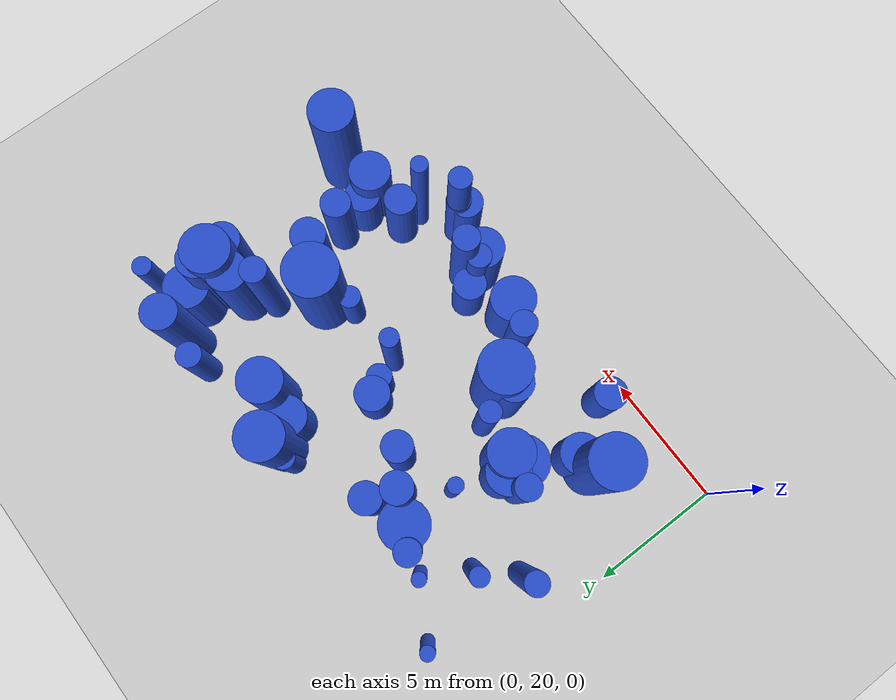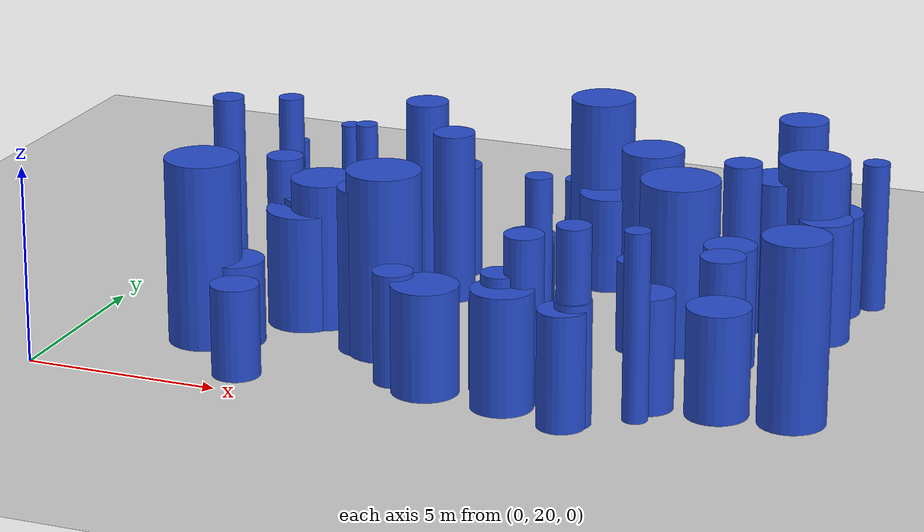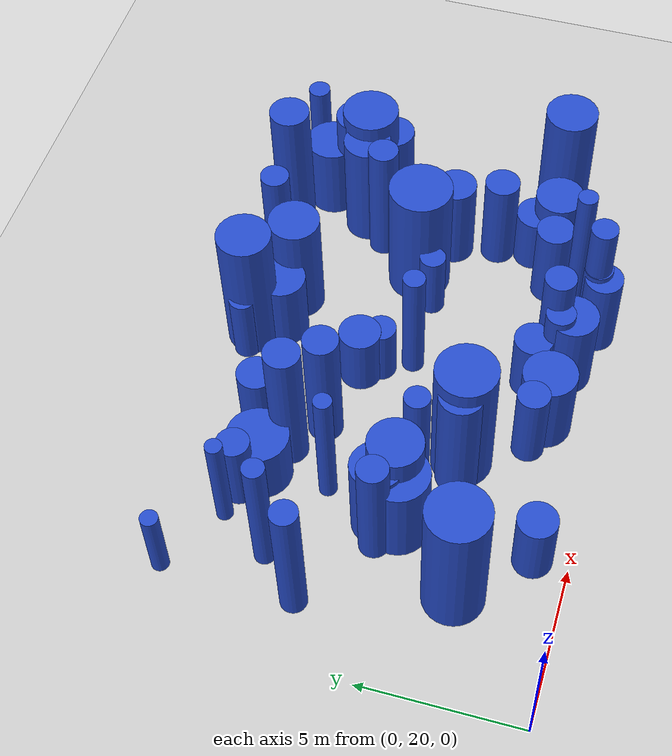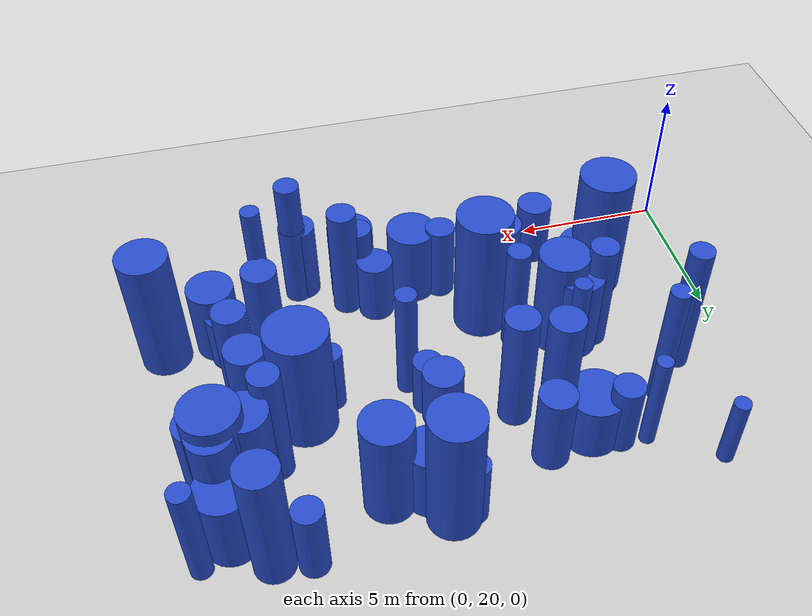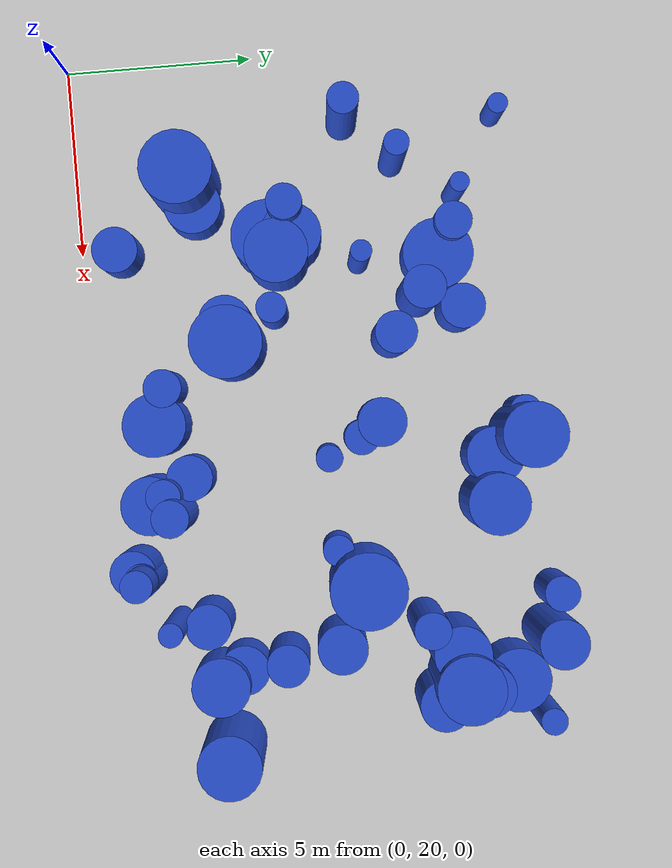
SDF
<sdf version="1.6">
 <world name="default">
  <model name="ground_plane">
   <static>1</static>
   <link name="link">
    <collision name="collision">
     <geometry><plane><normal>0 0 1</normal><size>100 100</size></plane></geometry>
     <surface><friction><ode><mu>100</mu><mu2>50</mu2></ode></friction></surface>
    </collision>
    <visual name="visual">
     <cast_shadows>0</cast_shadows>
     <geometry><plane><normal>0 0 1</normal><size>100 100</size></plane></geometry>
     <material>
      <script><uri>file://media/materials/scripts/gazebo.material</uri><name>Gazebo/Grey</name></script>
     </material>
    </visual>
   </link>
  </model>
  <model name="3">
   <static>0</static>
   <link name="link">
    <inertial>
     <mass>2</mass>
     <inertia><ixx>4.1115</ixx><ixy>0</ixy><ixz>0</ixz><iyy>4.1115</iyy><iyz>0</iyz><izz>0.173022</izz></inertia>
    </inertial>
    <collision name="collision">
     <geometry><cylinder><length>4.91426</length><radius>0.415959</radius></cylinder></geometry>
     <surface><contact><collide_without_contact>1</collide_without_contact></contact></surface>
    </collision>
    <visual name="visual">
     <geometry><cylinder><length>4.91426</length><radius>0.415959</radius></cylinder></geometry>
     <material>
      <script><uri>file://media/materials/scripts/gazebo.material</uri><name>Gazebo/Blue</name></script>
     </material>
    </visual>
    <gravity>0</gravity>
   </link>
   <pose>13.7823 21.1588 2.45713 0 -0 0</pose>
  </model>
  <model name="4">
   <static>0</static>
   <link name="link">
    <inertial>
     <mass>2</mass>
     <inertia><ixx>1.69462</ixx><ixy>0</ixy><ixz>0</ixz><iyy>1.69462</iyy><iyz>0</iyz><izz>0.206012</izz></inertia>
    </inertial>
    <collision name="collision">
     <geometry><cylinder><length>3.09026</length><radius>0.453885</radius></cylinder></geometry>
     <surface><contact><collide_without_contact>1</collide_without_contact></contact></surface>
    </collision>
    <visual name="visual">
     <geometry><cylinder><length>3.09026</length><radius>0.453885</radius></cylinder></geometry>
     <material>
      <script><uri>file://media/materials/scripts/gazebo.material</uri><name>Gazebo/Blue</name></script>
     </material>
    </visual>
    <gravity>0</gravity>
   </link>
   <pose>13.7872 21.1345 1.54513 0 -0 0</pose>
  </model>
  <model name="5">
   <static>0</static>
   <link name="link">
    <inertial>
     <mass>2</mass>
     <inertia><ixx>1.58752</ixx><ixy>0</ixy><ixz>0</ixz><iyy>1.58752</iyy><iyz>0</iyz><izz>0.355159</izz></inertia>
    </inertial>
    <collision name="collision">
     <geometry><cylinder><length>2.90855</length><radius>0.595952</radius></cylinder></geometry>
     <surface><contact><collide_without_contact>1</collide_without_contact></contact></surface>
    </collision>
    <visual name="visual">
     <geometry><cylinder><length>2.90855</length><radius>0.595952</radius></cylinder></geometry>
     <material>
      <script><uri>file://media/materials/scripts/gazebo.material</uri><name>Gazebo/Blue</name></script>
     </material>
    </visual>
    <gravity>0</gravity>
   </link>
   <pose>15.128 22.7537 1.45428 0 -0 0</pose>
  </model>
  <model name="9">
   <static>0</static>
   <link name="link">
    <inertial>
     <mass>2</mass>
     <inertia>
      <ixx>2.25253</ixx>
      <ixy>0</ixy>
      <ixz>0</ixz>
      <iyy>2.25253</iyy>
      <iyz>0</iyz>
      <izz>0.0659071</izz>
     </inertia>
    </inertial>
    <collision name="collision">
     <geometry><cylinder><length>3.64931</length><radius>0.256724</radius></cylinder></geometry>
     <surface><contact><collide_without_contact>1</collide_without_contact></contact></surface>
    </collision>
    <visual name="visual">
     <geometry><cylinder><length>3.64931</length><radius>0.256724</radius></cylinder></geometry>
     <material>
      <script><uri>file://media/materials/scripts/gazebo.material</uri><name>Gazebo/Blue</name></script>
     </material>
    </visual>
    <gravity>0</gravity>
   </link>
   <pose>4.20875 30.1664 1.82465 0 -0 0</pose>
  </model>
  <model name="12">
   <static>0</static>
   <link name="link">
    <inertial>
     <mass>2</mass>
     <inertia>
      <ixx>0.906578</ixx>
      <ixy>0</ixy>
      <ixz>0</ixz>
      <iyy>0.906578</iyy>
      <iyz>0</iyz>
      <izz>0.435424</izz>
     </inertia>
    </inertial>
    <collision name="collision">
     <geometry><cylinder><length>2.03303</length><radius>0.659867</radius></cylinder></geometry>
     <surface><contact><collide_without_contact>1</collide_without_contact></contact></surface>
    </collision>
    <visual name="visual">
     <geometry><cylinder><length>2.03303</length><radius>0.659867</radius></cylinder></geometry>
     <material>
      <script><uri>file://media/materials/scripts/gazebo.material</uri><name>Gazebo/Blue</name></script>
     </material>
    </visual>
    <gravity>0</gravity>
   </link>
   <pose>16.4375 23.5707 1.01651 0 -0 0</pose>
  </model>
  <model name="13">
   <static>0</static>
   <link name="link">
    <inertial>
     <mass>2</mass>
     <inertia><ixx>1.12414</ixx><ixy>0</ixy><ixz>0</ixz><iyy>1.12414</iyy><iyz>0</iyz><izz>0.883734</izz></inertia>
    </inertial>
    <collision name="collision">
     <geometry><cylinder><length>2.02328</length><radius>0.940072</radius></cylinder></geometry>
     <surface><contact><collide_without_contact>1</collide_without_contact></contact></surface>
    </collision>
    <visual name="visual">
     <geometry><cylinder><length>2.02328</length><radius>0.940072</radius></cylinder></geometry>
     <material>
      <script><uri>file://media/materials/scripts/gazebo.material</uri><name>Gazebo/Blue</name></script>
     </material>
    </visual>
    <gravity>0</gravity>
   </link>
   <pose>5.86916 29.5655 1.01164 0 -0 0</pose>
  </model>
  <model name="14">
   <static>0</static>
   <link name="link">
    <inertial>
     <mass>2</mass>
     <inertia><ixx>3.20253</ixx><ixy>0</ixy><ixz>0</ixz><iyy>3.20253</iyy><iyz>0</iyz><izz>0.453423</izz></inertia>
    </inertial>
    <collision name="collision">
     <geometry><cylinder><length>4.22551</length><radius>0.673367</radius></cylinder></geometry>
     <surface><contact><collide_without_contact>1</collide_without_contact></contact></surface>
    </collision>
    <visual name="visual">
     <geometry><cylinder><length>4.22551</length><radius>0.673367</radius></cylinder></geometry>
     <material>
      <script><uri>file://media/materials/scripts/gazebo.material</uri><name>Gazebo/Blue</name></script>
     </material>
    </visual>
    <gravity>0</gravity>
   </link>
   <pose>7.31113 23.8893 2.11276 0 -0 0</pose>
  </model>
  <model name="26">
   <static>0</static>
   <link name="link">
    <inertial>
     <mass>2</mass>
     <inertia><ixx>1.52925</ixx><ixy>0</ixy><ixz>0</ixz><iyy>1.52925</iyy><iyz>0</iyz><izz>0.603809</izz></inertia>
    </inertial>
    <collision name="collision">
     <geometry><cylinder><length>2.71368</length><radius>0.777051</radius></cylinder></geometry>
     <surface><contact><collide_without_contact>1</collide_without_contact></contact></surface>
    </collision>
    <visual name="visual">
     <geometry><cylinder><length>2.71368</length><radius>0.777051</radius></cylinder></geometry>
     <material>
      <script><uri>file://media/materials/scripts/gazebo.material</uri><name>Gazebo/Blue</name></script>
     </material>
    </visual>
    <gravity>0</gravity>
   </link>
   <pose>16.7592 22.9378 1.35684 0 -0 0</pose>
  </model>
  <model name="27">
   <static>0</static>
   <link name="link">
    <inertial>
     <mass>2</mass>
     <inertia><ixx>1.09126</ixx><ixy>0</ixy><ixz>0</ixz><iyy>1.09126</iyy><iyz>0</iyz><izz>0.36449</izz></inertia>
    </inertial>
    <collision name="collision">
     <geometry><cylinder><length>2.3354</length><radius>0.60373</radius></cylinder></geometry>
     <surface><contact><collide_without_contact>1</collide_without_contact></contact></surface>
    </collision>
    <visual name="visual">
     <geometry><cylinder><length>2.3354</length><radius>0.60373</radius></cylinder></geometry>
     <material>
      <script><uri>file://media/materials/scripts/gazebo.material</uri><name>Gazebo/Blue</name></script>
     </material>
    </visual>
    <gravity>0</gravity>
   </link>
   <pose>5.09837 21.0818 1.1677 0 -0 0</pose>
  </model>
  <model name="30">
   <static>0</static>
   <link name="link">
    <inertial>
     <mass>2</mass>
     <inertia><ixx>2.75593</ixx><ixy>0</ixy><ixz>0</ixz><iyy>2.75593</iyy><iyz>0</iyz><izz>0.688056</izz></inertia>
    </inertial>
    <collision name="collision">
     <geometry><cylinder><length>3.80413</length><radius>0.829491</radius></cylinder></geometry>
     <surface><contact><collide_without_contact>1</collide_without_contact></contact></surface>
    </collision>
    <visual name="visual">
     <geometry><cylinder><length>3.80413</length><radius>0.829491</radius></cylinder></geometry>
     <material>
      <script><uri>file://media/materials/scripts/gazebo.material</uri><name>Gazebo/Blue</name></script>
     </material>
    </visual>
    <gravity>0</gravity>
   </link>
   <pose>5.5824 25.3243 1.90206 0 -0 0</pose>
  </model>
  <model name="38">
   <static>0</static>
   <link name="link">
    <inertial>
     <mass>2</mass>
     <inertia><ixx>1.8464</ixx><ixy>0</ixy><ixz>0</ixz><iyy>1.8464</iyy><iyz>0</iyz><izz>0.210959</izz></inertia>
    </inertial>
    <collision name="collision">
     <geometry><cylinder><length>3.23195</length><radius>0.459303</radius></cylinder></geometry>
     <surface><contact><collide_without_contact>1</collide_without_contact></contact></surface>
    </collision>
    <visual name="visual">
     <geometry><cylinder><length>3.23195</length><radius>0.459303</radius></cylinder></geometry>
     <material>
      <script><uri>file://media/materials/scripts/gazebo.material</uri><name>Gazebo/Blue</name></script>
     </material>
    </visual>
    <gravity>0</gravity>
   </link>
   <pose>11.6565 21.8837 1.61598 0 -0 0</pose>
  </model>
  <model name="49">
   <static>0</static>
   <link name="link">
    <inertial>
     <mass>2</mass>
     <inertia><ixx>2.81765</ixx><ixy>0</ixy><ixz>0</ixz><iyy>2.81765</iyy><iyz>0</iyz><izz>0.156137</izz></inertia>
    </inertial>
    <collision name="collision">
     <geometry><cylinder><length>4.05431</length><radius>0.395141</radius></cylinder></geometry>
     <surface><contact><collide_without_contact>1</collide_without_contact></contact></surface>
    </collision>
    <visual name="visual">
     <geometry><cylinder><length>4.05431</length><radius>0.395141</radius></cylinder></geometry>
     <material>
      <script><uri>file://media/materials/scripts/gazebo.material</uri><name>Gazebo/Blue</name></script>
     </material>
    </visual>
    <gravity>0</gravity>
   </link>
   <pose>7.03901 25.0928 2.02716 0 -0 0</pose>
  </model>
  <model name="63">
   <static>0</static>
   <link name="link">
    <inertial>
     <mass>2</mass>
     <inertia><ixx>1.33081</ixx><ixy>0</ixy><ixz>0</ixz><iyy>1.33081</iyy><iyz>0</iyz><izz>0.586422</izz></inertia>
    </inertial>
    <collision name="collision">
     <geometry><cylinder><length>2.49512</length><radius>0.765782</radius></cylinder></geometry>
     <surface><contact><collide_without_contact>1</collide_without_contact></contact></surface>
    </collision>
    <visual name="visual">
     <geometry><cylinder><length>2.49512</length><radius>0.765782</radius></cylinder></geometry>
     <material>
      <script><uri>file://media/materials/scripts/gazebo.material</uri><name>Gazebo/Blue</name></script>
     </material>
    </visual>
    <gravity>0</gravity>
   </link>
   <pose>11.3127 30.6031 1.24756 0 -0 0</pose>
  </model>
  <model name="67">
   <static>0</static>
   <link name="link">
    <inertial>
     <mass>2</mass>
     <inertia>
      <ixx>3.75821</ixx>
      <ixy>0</ixy>
      <ixz>0</ixz>
      <iyy>3.75821</iyy>
      <iyz>0</iyz>
      <izz>0.0983354</izz>
     </inertia>
    </inertial>
    <collision name="collision">
     <geometry><cylinder><length>4.71744</length><radius>0.313585</radius></cylinder></geometry>
     <surface><contact><collide_without_contact>1</collide_without_contact></contact></surface>
    </collision>
    <visual name="visual">
     <geometry><cylinder><length>4.71744</length><radius>0.313585</radius></cylinder></geometry>
     <material>
      <script><uri>file://media/materials/scripts/gazebo.material</uri><name>Gazebo/Blue</name></script>
     </material>
    </visual>
    <gravity>0</gravity>
   </link>
   <pose>15.0789 21.9009 2.35872 0 -0 0</pose>
  </model>
  <model name="85">
   <static>0</static>
   <link name="link">
    <inertial>
     <mass>2</mass>
     <inertia><ixx>4.17735</ixx><ixy>0</ixy><ixz>0</ixz><iyy>4.17735</iyy><iyz>0</iyz><izz>0.305163</izz></inertia>
    </inertial>
    <collision name="collision">
     <geometry><cylinder><length>4.91412</length><radius>0.552415</radius></cylinder></geometry>
     <surface><contact><collide_without_contact>1</collide_without_contact></contact></surface>
    </collision>
    <visual name="visual">
     <geometry><cylinder><length>4.91412</length><radius>0.552415</radius></cylinder></geometry>
     <material>
      <script><uri>file://media/materials/scripts/gazebo.material</uri><name>Gazebo/Blue</name></script>
     </material>
    </visual>
    <gravity>0</gravity>
   </link>
   <pose>6.88431 28.9828 2.45706 0 -0 0</pose>
  </model>
  <model name="87">
   <static>0</static>
   <link name="link">
    <inertial>
     <mass>2</mass>
     <inertia><ixx>4.14558</ixx><ixy>0</ixy><ixz>0</ixz><iyy>4.14558</iyy><iyz>0</iyz><izz>0.875717</izz></inertia>
    </inertial>
    <collision name="collision">
     <geometry><cylinder><length>4.7166</length><radius>0.935798</radius></cylinder></geometry>
     <surface><contact><collide_without_contact>1</collide_without_contact></contact></surface>
    </collision>
    <visual name="visual">
     <geometry><cylinder><length>4.7166</length><radius>0.935798</radius></cylinder></geometry>
     <material>
      <script><uri>file://media/materials/scripts/gazebo.material</uri><name>Gazebo/Blue</name></script>
     </material>
    </visual>
    <gravity>0</gravity>
   </link>
   <pose>7.8366 23.8834 2.3583 0 -0 0</pose>
  </model>
  <model name="103">
   <static>0</static>
   <link name="link">
    <inertial>
     <mass>2</mass>
     <inertia>
      <ixx>0.968842</ixx>
      <ixy>0</ixy>
      <ixz>0</ixz>
      <iyy>0.968842</iyy>
      <iyz>0</iyz>
      <izz>0.42879</izz>
     </inertia>
    </inertial>
    <collision name="collision">
     <geometry><cylinder><length>2.1276</length><radius>0.654821</radius></cylinder></geometry>
     <surface><contact><collide_without_contact>1</collide_without_contact></contact></surface>
    </collision>
    <visual name="visual">
     <geometry><cylinder><length>2.1276</length><radius>0.654821</radius></cylinder></geometry>
     <material>
      <script><uri>file://media/materials/scripts/gazebo.material</uri><name>Gazebo/Blue</name></script>
     </material>
    </visual>
    <gravity>0</gravity>
   </link>
   <pose>10.1947 27.7329 1.0638 0 -0 0</pose>
  </model>
  <model name="106">
   <static>0</static>
   <link name="link">
    <inertial>
     <mass>2</mass>
     <inertia><ixx>1.79502</ixx><ixy>0</ixy><ixz>0</ixz><iyy>1.79502</iyy><iyz>0</iyz><izz>0.432629</izz></inertia>
    </inertial>
    <collision name="collision">
     <geometry><cylinder><length>3.0777</length><radius>0.657746</radius></cylinder></geometry>
     <surface><contact><collide_without_contact>1</collide_without_contact></contact></surface>
    </collision>
    <visual name="visual">
     <geometry><cylinder><length>3.0777</length><radius>0.657746</radius></cylinder></geometry>
     <material>
      <script><uri>file://media/materials/scripts/gazebo.material</uri><name>Gazebo/Blue</name></script>
     </material>
    </visual>
    <gravity>0</gravity>
   </link>
   <pose>15.9875 26.1954 1.53885 0 -0 0</pose>
  </model>
  <model name="127">
   <static>0</static>
   <link name="link">
    <inertial>
     <mass>2</mass>
     <inertia><ixx>4.23496</ixx><ixy>0</ixy><ixz>0</ixz><iyy>4.23496</iyy><iyz>0</iyz><izz>0.880403</izz></inertia>
    </inertial>
    <collision name="collision">
     <geometry><cylinder><length>4.77164</length><radius>0.938298</radius></cylinder></geometry>
     <surface><contact><collide_without_contact>1</collide_without_contact></contact></surface>
    </collision>
    <visual name="visual">
     <geometry><cylinder><length>4.77164</length><radius>0.938298</radius></cylinder></geometry>
     <material>
      <script><uri>file://media/materials/scripts/gazebo.material</uri><name>Gazebo/Blue</name></script>
     </material>
    </visual>
    <gravity>0</gravity>
   </link>
   <pose>3.3551 22.9957 2.38582 0 -0 0</pose>
  </model>
  <model name="128">
   <static>0</static>
   <link name="link">
    <inertial>
     <mass>2</mass>
     <inertia><ixx>2.87427</ixx><ixy>0</ixy><ixz>0</ixz><iyy>2.87427</iyy><iyz>0</iyz><izz>0.48546</izz></inertia>
    </inertial>
    <collision name="collision">
     <geometry><cylinder><length>3.97357</length><radius>0.69675</radius></cylinder></geometry>
     <surface><contact><collide_without_contact>1</collide_without_contact></contact></surface>
    </collision>
    <visual name="visual">
     <geometry><cylinder><length>3.97357</length><radius>0.69675</radius></cylinder></geometry>
     <material>
      <script><uri>file://media/materials/scripts/gazebo.material</uri><name>Gazebo/Blue</name></script>
     </material>
    </visual>
    <gravity>0</gravity>
   </link>
   <pose>17.2459 29.8304 1.98678 0 -0 0</pose>
  </model>
  <model name="141">
   <static>0</static>
   <link name="link">
    <inertial>
     <mass>2</mass>
     <inertia>
      <ixx>0.831052</ixx>
      <ixy>0</ixy>
      <ixz>0</ixz>
      <iyy>0.831052</iyy>
      <iyz>0</iyz>
      <izz>0.221079</izz>
     </inertia>
    </inertial>
    <collision name="collision">
     <geometry><cylinder><length>2.0792</length><radius>0.470191</radius></cylinder></geometry>
     <surface><contact><collide_without_contact>1</collide_without_contact></contact></surface>
    </collision>
    <visual name="visual">
     <geometry><cylinder><length>2.0792</length><radius>0.470191</radius></cylinder></geometry>
     <material>
      <script><uri>file://media/materials/scripts/gazebo.material</uri><name>Gazebo/Blue</name></script>
     </material>
    </visual>
    <gravity>0</gravity>
   </link>
   <pose>10.5526 27.1609 1.0396 0 -0 0</pose>
  </model>
  <model name="148">
   <static>0</static>
   <link name="link">
    <inertial>
     <mass>2</mass>
     <inertia><ixx>1.09263</ixx><ixy>0</ixy><ixz>0</ixz><iyy>1.09263</iyy><iyz>0</iyz><izz>0.174994</izz></inertia>
    </inertial>
    <collision name="collision">
     <geometry><cylinder><length>2.45577</length><radius>0.418322</radius></cylinder></geometry>
     <surface><contact><collide_without_contact>1</collide_without_contact></contact></surface>
    </collision>
    <visual name="visual">
     <geometry><cylinder><length>2.45577</length><radius>0.418322</radius></cylinder></geometry>
     <material>
      <script><uri>file://media/materials/scripts/gazebo.material</uri><name>Gazebo/Blue</name></script>
     </material>
    </visual>
    <gravity>0</gravity>
   </link>
   <pose>10.2028 31.4946 1.22788 0 -0 0</pose>
  </model>
  <model name="158">
   <static>0</static>
   <link name="link">
    <inertial>
     <mass>2</mass>
     <inertia><ixx>4.17302</ixx><ixy>0</ixy><ixz>0</ixz><iyy>4.17302</iyy><iyz>0</iyz><izz>0.165975</izz></inertia>
    </inertial>
    <collision name="collision">
     <geometry><cylinder><length>4.95381</length><radius>0.4074</radius></cylinder></geometry>
     <surface><contact><collide_without_contact>1</collide_without_contact></contact></surface>
    </collision>
    <visual name="visual">
     <geometry><cylinder><length>4.95381</length><radius>0.4074</radius></cylinder></geometry>
     <material>
      <script><uri>file://media/materials/scripts/gazebo.material</uri><name>Gazebo/Blue</name></script>
     </material>
    </visual>
    <gravity>0</gravity>
   </link>
   <pose>2.01735 27.3295 2.4769 0 -0 0</pose>
  </model>
  <model name="181">
   <static>0</static>
   <link name="link">
    <inertial>
     <mass>2</mass>
     <inertia><ixx>3.41972</ixx><ixy>0</ixy><ixz>0</ixz><iyy>3.41972</iyy><iyz>0</iyz><izz>0.29381</izz></inertia>
    </inertial>
    <collision name="collision">
     <geometry><cylinder><length>4.43136</length><radius>0.542042</radius></cylinder></geometry>
     <surface><contact><collide_without_contact>1</collide_without_contact></contact></surface>
    </collision>
    <visual name="visual">
     <geometry><cylinder><length>4.43136</length><radius>0.542042</radius></cylinder></geometry>
     <material>
      <script><uri>file://media/materials/scripts/gazebo.material</uri><name>Gazebo/Blue</name></script>
     </material>
    </visual>
    <gravity>0</gravity>
   </link>
   <pose>7.94323 28.1987 2.21568 0 -0 0</pose>
  </model>
  <model name="183">
   <static>0</static>
   <link name="link">
    <inertial>
     <mass>2</mass>
     <inertia><ixx>1.59692</ixx><ixy>0</ixy><ixz>0</ixz><iyy>1.59692</iyy><iyz>0</iyz><izz>0.360686</izz></inertia>
    </inertial>
    <collision name="collision">
     <geometry><cylinder><length>2.91538</length><radius>0.600571</radius></cylinder></geometry>
     <surface><contact><collide_without_contact>1</collide_without_contact></contact></surface>
    </collision>
    <visual name="visual">
     <geometry><cylinder><length>2.91538</length><radius>0.600571</radius></cylinder></geometry>
     <material>
      <script><uri>file://media/materials/scripts/gazebo.material</uri><name>Gazebo/Blue</name></script>
     </material>
    </visual>
    <gravity>0</gravity>
   </link>
   <pose>13.5905 20.9137 1.45769 0 -0 0</pose>
  </model>
  <model name="198">
   <static>0</static>
   <link name="link">
    <inertial>
     <mass>2</mass>
     <inertia><ixx>1.40641</ixx><ixy>0</ixy><ixz>0</ixz><iyy>1.40641</iyy><iyz>0</iyz><izz>0.219286</izz></inertia>
    </inertial>
    <collision name="collision">
     <geometry><cylinder><length>2.78937</length><radius>0.46828</radius></cylinder></geometry>
     <surface><contact><collide_without_contact>1</collide_without_contact></contact></surface>
    </collision>
    <visual name="visual">
     <geometry><cylinder><length>2.78937</length><radius>0.46828</radius></cylinder></geometry>
     <material>
      <script><uri>file://media/materials/scripts/gazebo.material</uri><name>Gazebo/Blue</name></script>
     </material>
    </visual>
    <gravity>0</gravity>
   </link>
   <pose>15.0438 32.0205 1.39468 0 -0 0</pose>
  </model>
  <model name="207">
   <static>0</static>
   <link name="link">
    <inertial>
     <mass>2</mass>
     <inertia><ixx>2.7846</ixx><ixy>0</ixy><ixz>0</ixz><iyy>2.7846</iyy><iyz>0</iyz><izz>0.647646</izz></inertia>
    </inertial>
    <collision name="collision">
     <geometry><cylinder><length>3.84248</length><radius>0.804765</radius></cylinder></geometry>
     <surface><contact><collide_without_contact>1</collide_without_contact></contact></surface>
    </collision>
    <visual name="visual">
     <geometry><cylinder><length>3.84248</length><radius>0.804765</radius></cylinder></geometry>
     <material>
      <script><uri>file://media/materials/scripts/gazebo.material</uri><name>Gazebo/Blue</name></script>
     </material>
    </visual>
    <gravity>0</gravity>
   </link>
   <pose>12.5267 30.4966 1.92124 0 -0 0</pose>
  </model>
  <model name="208">
   <static>0</static>
   <link name="link">
    <inertial>
     <mass>2</mass>
     <inertia><ixx>1.16211</ixx><ixy>0</ixy><ixz>0</ixz><iyy>1.16211</iyy><iyz>0</iyz><izz>0.071987</izz></inertia>
    </inertial>
    <collision name="collision">
     <geometry><cylinder><length>2.59936</length><radius>0.268304</radius></cylinder></geometry>
     <surface><contact><collide_without_contact>1</collide_without_contact></contact></surface>
    </collision>
    <visual name="visual">
     <geometry><cylinder><length>2.59936</length><radius>0.268304</radius></cylinder></geometry>
     <material>
      <script><uri>file://media/materials/scripts/gazebo.material</uri><name>Gazebo/Blue</name></script>
     </material>
    </visual>
    <gravity>0</gravity>
   </link>
   <pose>2.12682 31.4104 1.29968 0 -0 0</pose>
  </model>
  <model name="213">
   <static>0</static>
   <link name="link">
    <inertial>
     <mass>2</mass>
     <inertia><ixx>1.78324</ixx><ixy>0</ixy><ixz>0</ixz><iyy>1.78324</iyy><iyz>0</iyz><izz>0.59989</izz></inertia>
    </inertial>
    <collision name="collision">
     <geometry><cylinder><length>2.98324</length><radius>0.774526</radius></cylinder></geometry>
     <surface><contact><collide_without_contact>1</collide_without_contact></contact></surface>
    </collision>
    <visual name="visual">
     <geometry><cylinder><length>2.98324</length><radius>0.774526</radius></cylinder></geometry>
     <material>
      <script><uri>file://media/materials/scripts/gazebo.material</uri><name>Gazebo/Blue</name></script>
     </material>
    </visual>
    <gravity>0</gravity>
   </link>
   <pose>11.8651 21.5149 1.49162 0 -0 0</pose>
  </model>
  <model name="219">
   <static>0</static>
   <link name="link">
    <inertial>
     <mass>2</mass>
     <inertia>
      <ixx>3.59436</ixx>
      <ixy>0</ixy>
      <ixz>0</ixz>
      <iyy>3.59436</iyy>
      <iyz>0</iyz>
      <izz>0.0774446</izz>
     </inertia>
    </inertial>
    <collision name="collision">
     <geometry><cylinder><length>4.61885</length><radius>0.278289</radius></cylinder></geometry>
     <surface><contact><collide_without_contact>1</collide_without_contact></contact></surface>
    </collision>
    <visual name="visual">
     <geometry><cylinder><length>4.61885</length><radius>0.278289</radius></cylinder></geometry>
     <material>
      <script><uri>file://media/materials/scripts/gazebo.material</uri><name>Gazebo/Blue</name></script>
     </material>
    </visual>
    <gravity>0</gravity>
   </link>
   <pose>5.8375 27.4771 2.30943 0 -0 0</pose>
  </model>
  <model name="228">
   <static>0</static>
   <link name="link">
    <inertial>
     <mass>2</mass>
     <inertia><ixx>3.78381</ixx><ixy>0</ixy><ixz>0</ixz><iyy>3.78381</iyy><iyz>0</iyz><izz>0.108719</izz></inertia>
    </inertial>
    <collision name="collision">
     <geometry><cylinder><length>4.7304</length><radius>0.329726</radius></cylinder></geometry>
     <surface><contact><collide_without_contact>1</collide_without_contact></contact></surface>
    </collision>
    <visual name="visual">
     <geometry><cylinder><length>4.7304</length><radius>0.329726</radius></cylinder></geometry>
     <material>
      <script><uri>file://media/materials/scripts/gazebo.material</uri><name>Gazebo/Blue</name></script>
     </material>
    </visual>
    <gravity>0</gravity>
   </link>
   <pose>3.21008 28.5835 2.3652 0 -0 0</pose>
  </model>
  <model name="236">
   <static>0</static>
   <link name="link">
    <inertial>
     <mass>2</mass>
     <inertia><ixx>1.62333</ixx><ixy>0</ixy><ixz>0</ixz><iyy>1.62333</iyy><iyz>0</iyz><izz>0.346432</izz></inertia>
    </inertial>
    <collision name="collision">
     <geometry><cylinder><length>2.94969</length><radius>0.588585</radius></cylinder></geometry>
     <surface><contact><collide_without_contact>1</collide_without_contact></contact></surface>
    </collision>
    <visual name="visual">
     <geometry><cylinder><length>2.94969</length><radius>0.588585</radius></cylinder></geometry>
     <material>
      <script><uri>file://media/materials/scripts/gazebo.material</uri><name>Gazebo/Blue</name></script>
     </material>
    </visual>
    <gravity>0</gravity>
   </link>
   <pose>7.3506 30.0457 1.47485 0 -0 0</pose>
  </model>
  <model name="247">
   <static>0</static>
   <link name="link">
    <inertial>
     <mass>2</mass>
     <inertia><ixx>2.84689</ixx><ixy>0</ixy><ixz>0</ixz><iyy>2.84689</iyy><iyz>0</iyz><izz>0.568106</izz></inertia>
    </inertial>
    <collision name="collision">
     <geometry><cylinder><length>3.92135</length><radius>0.753728</radius></cylinder></geometry>
     <surface><contact><collide_without_contact>1</collide_without_contact></contact></surface>
    </collision>
    <visual name="visual">
     <geometry><cylinder><length>3.92135</length><radius>0.753728</radius></cylinder></geometry>
     <material>
      <script><uri>file://media/materials/scripts/gazebo.material</uri><name>Gazebo/Blue</name></script>
     </material>
    </visual>
    <gravity>0</gravity>
   </link>
   <pose>16.2897 29.2383 1.96068 0 -0 0</pose>
  </model>
  <model name="260">
   <static>0</static>
   <link name="link">
    <inertial>
     <mass>2</mass>
     <inertia><ixx>2.97715</ixx><ixy>0</ixy><ixz>0</ixz><iyy>2.97715</iyy><iyz>0</iyz><izz>0.21858</izz></inertia>
    </inertial>
    <collision name="collision">
     <geometry><cylinder><length>4.14815</length><radius>0.467525</radius></cylinder></geometry>
     <surface><contact><collide_without_contact>1</collide_without_contact></contact></surface>
    </collision>
    <visual name="visual">
     <geometry><cylinder><length>4.14815</length><radius>0.467525</radius></cylinder></geometry>
     <material>
      <script><uri>file://media/materials/scripts/gazebo.material</uri><name>Gazebo/Blue</name></script>
     </material>
    </visual>
    <gravity>0</gravity>
   </link>
   <pose>4.3844 25.6337 2.07408 0 -0 0</pose>
  </model>
  <model name="268">
   <static>0</static>
   <link name="link">
    <inertial>
     <mass>2</mass>
     <inertia><ixx>3.62366</ixx><ixy>0</ixy><ixz>0</ixz><iyy>3.62366</iyy><iyz>0</iyz><izz>0.999953</izz></inertia>
    </inertial>
    <collision name="collision">
     <geometry><cylinder><length>4.32921</length><radius>0.999977</radius></cylinder></geometry>
     <surface><contact><collide_without_contact>1</collide_without_contact></contact></surface>
    </collision>
    <visual name="visual">
     <geometry><cylinder><length>4.32921</length><radius>0.999977</radius></cylinder></geometry>
     <material>
      <script><uri>file://media/materials/scripts/gazebo.material</uri><name>Gazebo/Blue</name></script>
     </material>
    </visual>
    <gravity>0</gravity>
   </link>
   <pose>14.4357 26.9722 2.16461 0 -0 0</pose>
  </model>
  <model name="280">
   <static>0</static>
   <link name="link">
    <inertial>
     <mass>2</mass>
     <inertia>
      <ixx>0.777397</ixx>
      <ixy>0</ixy>
      <ixz>0</ixz>
      <iyy>0.777397</iyy>
      <iyz>0</iyz>
      <izz>0.0986761</izz>
     </inertia>
    </inertial>
    <collision name="collision">
     <geometry><cylinder><length>2.09006</length><radius>0.314128</radius></cylinder></geometry>
     <surface><contact><collide_without_contact>1</collide_without_contact></contact></surface>
    </collision>
    <visual name="visual">
     <geometry><cylinder><length>2.09006</length><radius>0.314128</radius></cylinder></geometry>
     <material>
      <script><uri>file://media/materials/scripts/gazebo.material</uri><name>Gazebo/Blue</name></script>
     </material>
    </visual>
    <gravity>0</gravity>
   </link>
   <pose>17.4288 29.4138 1.04503 0 -0 0</pose>
  </model>
  <model name="283">
   <static>0</static>
   <link name="link">
    <inertial>
     <mass>2</mass>
     <inertia><ixx>1.59227</ixx><ixy>0</ixy><ixz>0</ixz><iyy>1.59227</iyy><iyz>0</iyz><izz>0.699832</izz></inertia>
    </inertial>
    <collision name="collision">
     <geometry><cylinder><length>2.73022</length><radius>0.83656</radius></cylinder></geometry>
     <surface><contact><collide_without_contact>1</collide_without_contact></contact></surface>
    </collision>
    <visual name="visual">
     <geometry><cylinder><length>2.73022</length><radius>0.83656</radius></cylinder></geometry>
     <material>
      <script><uri>file://media/materials/scripts/gazebo.material</uri><name>Gazebo/Blue</name></script>
     </material>
    </visual>
    <gravity>0</gravity>
   </link>
   <pose>9.78901 21.7645 1.36511 0 -0 0</pose>
  </model>
  <model name="286">
   <static>0</static>
   <link name="link">
    <inertial>
     <mass>2</mass>
     <inertia><ixx>4.11839</ixx><ixy>0</ixy><ixz>0</ixz><iyy>4.11839</iyy><iyz>0</iyz><izz>0.705826</izz></inertia>
    </inertial>
    <collision name="collision">
     <geometry><cylinder><length>4.75319</length><radius>0.840134</radius></cylinder></geometry>
     <surface><contact><collide_without_contact>1</collide_without_contact></contact></surface>
    </collision>
    <visual name="visual">
     <geometry><cylinder><length>4.75319</length><radius>0.840134</radius></cylinder></geometry>
     <material>
      <script><uri>file://media/materials/scripts/gazebo.material</uri><name>Gazebo/Blue</name></script>
     </material>
    </visual>
    <gravity>0</gravity>
   </link>
   <pose>10.8123 31.4701 2.3766 0 -0 0</pose>
  </model>
  <model name="303">
   <static>0</static>
   <link name="link">
    <inertial>
     <mass>2</mass>
     <inertia><ixx>1.88948</ixx><ixy>0</ixy><ixz>0</ixz><iyy>1.88948</iyy><iyz>0</iyz><izz>0.456465</izz></inertia>
    </inertial>
    <collision name="collision">
     <geometry><cylinder><length>3.15714</length><radius>0.675622</radius></cylinder></geometry>
     <surface><contact><collide_without_contact>1</collide_without_contact></contact></surface>
    </collision>
    <visual name="visual">
     <geometry><cylinder><length>3.15714</length><radius>0.675622</radius></cylinder></geometry>
     <material>
      <script><uri>file://media/materials/scripts/gazebo.material</uri><name>Gazebo/Blue</name></script>
     </material>
    </visual>
    <gravity>0</gravity>
   </link>
   <pose>17.6546 28.7358 1.57857 0 -0 0</pose>
  </model>
  <model name="307">
   <static>0</static>
   <link name="link">
    <inertial>
     <mass>2</mass>
     <inertia><ixx>1.06271</ixx><ixy>0</ixy><ixz>0</ixz><iyy>1.06271</iyy><iyz>0</iyz><izz>0.573719</izz></inertia>
    </inertial>
    <collision name="collision">
     <geometry><cylinder><length>2.15756</length><radius>0.757442</radius></cylinder></geometry>
     <surface><contact><collide_without_contact>1</collide_without_contact></contact></surface>
    </collision>
    <visual name="visual">
     <geometry><cylinder><length>2.15756</length><radius>0.757442</radius></cylinder></geometry>
     <material>
      <script><uri>file://media/materials/scripts/gazebo.material</uri><name>Gazebo/Blue</name></script>
     </material>
    </visual>
    <gravity>0</gravity>
   </link>
   <pose>4.07551 23.2072 1.07878 0 -0 0</pose>
  </model>
  <model name="320">
   <static>0</static>
   <link name="link">
    <inertial>
     <mass>2</mass>
     <inertia><ixx>3.85561</ixx><ixy>0</ixy><ixz>0</ixz><iyy>3.85561</iyy><iyz>0</iyz><izz>0.408271</izz></inertia>
    </inertial>
    <collision name="collision">
     <geometry><cylinder><length>4.68069</length><radius>0.638961</radius></cylinder></geometry>
     <surface><contact><collide_without_contact>1</collide_without_contact></contact></surface>
    </collision>
    <visual name="visual">
     <geometry><cylinder><length>4.68069</length><radius>0.638961</radius></cylinder></geometry>
     <material>
      <script><uri>file://media/materials/scripts/gazebo.material</uri><name>Gazebo/Blue</name></script>
     </material>
    </visual>
    <gravity>0</gravity>
   </link>
   <pose>16.1416 31.7594 2.34034 0 -0 0</pose>
  </model>
  <model name="323">
   <static>0</static>
   <link name="link">
    <inertial>
     <mass>2</mass>
     <inertia><ixx>1.0467</ixx><ixy>0</ixy><ixz>0</ixz><iyy>1.0467</iyy><iyz>0</iyz><izz>0.372602</izz></inertia>
    </inertial>
    <collision name="collision">
     <geometry><cylinder><length>2.27209</length><radius>0.610412</radius></cylinder></geometry>
     <surface><contact><collide_without_contact>1</collide_without_contact></contact></surface>
    </collision>
    <visual name="visual">
     <geometry><cylinder><length>2.27209</length><radius>0.610412</radius></cylinder></geometry>
     <material>
      <script><uri>file://media/materials/scripts/gazebo.material</uri><name>Gazebo/Blue</name></script>
     </material>
    </visual>
    <gravity>0</gravity>
   </link>
   <pose>11.2494 22.5472 1.13605 0 -0 0</pose>
  </model>
  <model name="336">
   <static>0</static>
   <link name="link">
    <inertial>
     <mass>2</mass>
     <inertia><ixx>1.27339</ixx><ixy>0</ixy><ixz>0</ixz><iyy>1.27339</iyy><iyz>0</iyz><izz>0.249025</izz></inertia>
    </inertial>
    <collision name="collision">
     <geometry><cylinder><length>2.6255</length><radius>0.499024</radius></cylinder></geometry>
     <surface><contact><collide_without_contact>1</collide_without_contact></contact></surface>
    </collision>
    <visual name="visual">
     <geometry><cylinder><length>2.6255</length><radius>0.499024</radius></cylinder></geometry>
     <material>
      <script><uri>file://media/materials/scripts/gazebo.material</uri><name>Gazebo/Blue</name></script>
     </material>
    </visual>
    <gravity>0</gravity>
   </link>
   <pose>5.08159 30.0037 1.31275 0 -0 0</pose>
  </model>
  <model name="342">
   <static>0</static>
   <link name="link">
    <inertial>
     <mass>2</mass>
     <inertia><ixx>3.06094</ixx><ixy>0</ixy><ixz>0</ixz><iyy>3.06094</iyy><iyz>0</iyz><izz>0.239341</izz></inertia>
    </inertial>
    <collision name="collision">
     <geometry><cylinder><length>4.20091</length><radius>0.489225</radius></cylinder></geometry>
     <surface><contact><collide_without_contact>1</collide_without_contact></contact></surface>
    </collision>
    <visual name="visual">
     <geometry><cylinder><length>4.20091</length><radius>0.489225</radius></cylinder></geometry>
     <material>
      <script><uri>file://media/materials/scripts/gazebo.material</uri><name>Gazebo/Blue</name></script>
     </material>
    </visual>
    <gravity>0</gravity>
   </link>
   <pose>12.1926 22.0886 2.10045 0 -0 0</pose>
  </model>
  <model name="355">
   <static>0</static>
   <link name="link">
    <inertial>
     <mass>2</mass>
     <inertia><ixx>1.97727</ixx><ixy>0</ixy><ixz>0</ixz><iyy>1.97727</iyy><iyz>0</iyz><izz>0.310913</izz></inertia>
    </inertial>
    <collision name="collision">
     <geometry><cylinder><length>3.30619</length><radius>0.557595</radius></cylinder></geometry>
     <surface><contact><collide_without_contact>1</collide_without_contact></contact></surface>
    </collision>
    <visual name="visual">
     <geometry><cylinder><length>3.30619</length><radius>0.557595</radius></cylinder></geometry>
     <material>
      <script><uri>file://media/materials/scripts/gazebo.material</uri><name>Gazebo/Blue</name></script>
     </material>
    </visual>
    <gravity>0</gravity>
   </link>
   <pose>16.2663 24.751 1.65309 0 -0 0</pose>
  </model>
  <model name="360">
   <static>0</static>
   <link name="link">
    <inertial>
     <mass>2</mass>
     <inertia><ixx>3.03882</ixx><ixy>0</ixy><ixz>0</ixz><iyy>3.03882</iyy><iyz>0</iyz><izz>0.119632</izz></inertia>
    </inertial>
    <collision name="collision">
     <geometry><cylinder><length>4.22777</length><radius>0.345879</radius></cylinder></geometry>
     <surface><contact><collide_without_contact>1</collide_without_contact></contact></surface>
    </collision>
    <visual name="visual">
     <geometry><cylinder><length>4.22777</length><radius>0.345879</radius></cylinder></geometry>
     <material>
      <script><uri>file://media/materials/scripts/gazebo.material</uri><name>Gazebo/Blue</name></script>
     </material>
    </visual>
    <gravity>0</gravity>
   </link>
   <pose>10.9921 26.2539 2.11389 0 -0 0</pose>
  </model>
  <model name="383">
   <static>0</static>
   <link name="link">
    <inertial>
     <mass>2</mass>
     <inertia><ixx>1.98687</ixx><ixy>0</ixy><ixz>0</ixz><iyy>1.98687</iyy><iyz>0</iyz><izz>0.62909</izz></inertia>
    </inertial>
    <collision name="collision">
     <geometry><cylinder><length>3.16764</length><radius>0.793152</radius></cylinder></geometry>
     <surface><contact><collide_without_contact>1</collide_without_contact></contact></surface>
    </collision>
    <visual name="visual">
     <geometry><cylinder><length>3.16764</length><radius>0.793152</radius></cylinder></geometry>
     <material>
      <script><uri>file://media/materials/scripts/gazebo.material</uri><name>Gazebo/Blue</name></script>
     </material>
    </visual>
    <gravity>0</gravity>
   </link>
   <pose>5.12083 25.7386 1.58382 0 -0 0</pose>
  </model>
  <model name="424">
   <static>0</static>
   <link name="link">
    <inertial>
     <mass>2</mass>
     <inertia><ixx>3.39087</ixx><ixy>0</ixy><ixz>0</ixz><iyy>3.39087</iyy><iyz>0</iyz><izz>0.229404</izz></inertia>
    </inertial>
    <collision name="collision">
     <geometry><cylinder><length>4.43362</length><radius>0.478961</radius></cylinder></geometry>
     <surface><contact><collide_without_contact>1</collide_without_contact></contact></surface>
    </collision>
    <visual name="visual">
     <geometry><cylinder><length>4.43362</length><radius>0.478961</radius></cylinder></geometry>
     <material>
      <script><uri>file://media/materials/scripts/gazebo.material</uri><name>Gazebo/Blue</name></script>
     </material>
    </visual>
    <gravity>0</gravity>
   </link>
   <pose>15.554 28.4933 2.21681 0 -0 0</pose>
  </model>
  <model name="426">
   <static>0</static>
   <link name="link">
    <inertial>
     <mass>2</mass>
     <inertia><ixx>2.55974</ixx><ixy>0</ixy><ixz>0</ixz><iyy>2.55974</iyy><iyz>0</iyz><izz>0.119066</izz></inertia>
    </inertial>
    <collision name="collision">
     <geometry><cylinder><length>3.87314</length><radius>0.34506</radius></cylinder></geometry>
     <surface><contact><collide_without_contact>1</collide_without_contact></contact></surface>
    </collision>
    <visual name="visual">
     <geometry><cylinder><length>3.87314</length><radius>0.34506</radius></cylinder></geometry>
     <material>
      <script><uri>file://media/materials/scripts/gazebo.material</uri><name>Gazebo/Blue</name></script>
     </material>
    </visual>
    <gravity>0</gravity>
   </link>
   <pose>18.1763 31.4202 1.93657 0 -0 0</pose>
  </model>
  <model name="443">
   <static>0</static>
   <link name="link">
    <inertial>
     <mass>2</mass>
     <inertia><ixx>1.52778</ixx><ixy>0</ixy><ixz>0</ixz><iyy>1.52778</iyy><iyz>0</iyz><izz>0.701354</izz></inertia>
    </inertial>
    <collision name="collision">
     <geometry><cylinder><length>2.65756</length><radius>0.837469</radius></cylinder></geometry>
     <surface><contact><collide_without_contact>1</collide_without_contact></contact></surface>
    </collision>
    <visual name="visual">
     <geometry><cylinder><length>2.65756</length><radius>0.837469</radius></cylinder></geometry>
     <material>
      <script><uri>file://media/materials/scripts/gazebo.material</uri><name>Gazebo/Blue</name></script>
     </material>
    </visual>
    <gravity>0</gravity>
   </link>
   <pose>17.2135 30.7319 1.32878 0 -0 0</pose>
  </model>
  <model name="456">
   <static>0</static>
   <link name="link">
    <inertial>
     <mass>2</mass>
     <inertia><ixx>1.00763</ixx><ixy>0</ixy><ixz>0</ixz><iyy>1.00763</iyy><iyz>0</iyz><izz>0.171037</izz></inertia>
    </inertial>
    <collision name="collision">
     <geometry><cylinder><length>2.35216</length><radius>0.413566</radius></cylinder></geometry>
     <surface><contact><collide_without_contact>1</collide_without_contact></contact></surface>
    </collision>
    <visual name="visual">
     <geometry><cylinder><length>2.35216</length><radius>0.413566</radius></cylinder></geometry>
     <material>
      <script><uri>file://media/materials/scripts/gazebo.material</uri><name>Gazebo/Blue</name></script>
     </material>
    </visual>
    <gravity>0</gravity>
   </link>
   <pose>13.4704 26.3011 1.17608 0 -0 0</pose>
  </model>
  <model name="462">
   <static>0</static>
   <link name="link">
    <inertial>
     <mass>2</mass>
     <inertia><ixx>3.66359</ixx><ixy>0</ixy><ixz>0</ixz><iyy>3.66359</iyy><iyz>0</iyz><izz>0.794868</izz></inertia>
    </inertial>
    <collision name="collision">
     <geometry><cylinder><length>4.42684</length><radius>0.891554</radius></cylinder></geometry>
     <surface><contact><collide_without_contact>1</collide_without_contact></contact></surface>
    </collision>
    <visual name="visual">
     <geometry><cylinder><length>4.42684</length><radius>0.891554</radius></cylinder></geometry>
     <material>
      <script><uri>file://media/materials/scripts/gazebo.material</uri><name>Gazebo/Blue</name></script>
     </material>
    </visual>
    <gravity>0</gravity>
   </link>
   <pose>17.1407 29.3585 2.21342 0 -0 0</pose>
  </model>
  <model name="471">
   <static>0</static>
   <link name="link">
    <inertial>
     <mass>2</mass>
     <inertia><ixx>3.92456</ixx><ixy>0</ixy><ixz>0</ixz><iyy>3.92456</iyy><iyz>0</iyz><izz>0.690159</izz></inertia>
    </inertial>
    <collision name="collision">
     <geometry><cylinder><length>4.63431</length><radius>0.830758</radius></cylinder></geometry>
     <surface><contact><collide_without_contact>1</collide_without_contact></contact></surface>
    </collision>
    <visual name="visual">
     <geometry><cylinder><length>4.63431</length><radius>0.830758</radius></cylinder></geometry>
     <material>
      <script><uri>file://media/materials/scripts/gazebo.material</uri><name>Gazebo/Blue</name></script>
     </material>
    </visual>
    <gravity>0</gravity>
   </link>
   <pose>18.5513 23.0974 2.31716 0 -0 0</pose>
  </model>
  <model name="488">
   <static>0</static>
   <link name="link">
    <inertial>
     <mass>2</mass>
     <inertia><ixx>1.95147</ixx><ixy>0</ixy><ixz>0</ixz><iyy>1.95147</iyy><iyz>0</iyz><izz>0.885184</izz></inertia>
    </inertial>
    <collision name="collision">
     <geometry><cylinder><length>3.00886</length><radius>0.940842</radius></cylinder></geometry>
     <surface><contact><collide_without_contact>1</collide_without_contact></contact></surface>
    </collision>
    <visual name="visual">
     <geometry><cylinder><length>3.00886</length><radius>0.940842</radius></cylinder></geometry>
     <material>
      <script><uri>file://media/materials/scripts/gazebo.material</uri><name>Gazebo/Blue</name></script>
     </material>
    </visual>
    <gravity>0</gravity>
   </link>
   <pose>5.1136 25.1139 1.50443 0 -0 0</pose>
  </model>
  <model name="497">
   <static>0</static>
   <link name="link">
    <inertial>
     <mass>2</mass>
     <inertia><ixx>1.47329</ixx><ixy>0</ixy><ixz>0</ixz><iyy>1.47329</iyy><iyz>0</iyz><izz>0.250804</izz></inertia>
    </inertial>
    <collision name="collision">
     <geometry><cylinder><length>2.84383</length><radius>0.500804</radius></cylinder></geometry>
     <surface><contact><collide_without_contact>1</collide_without_contact></contact></surface>
    </collision>
    <visual name="visual">
     <geometry><cylinder><length>2.84383</length><radius>0.500804</radius></cylinder></geometry>
     <material>
      <script><uri>file://media/materials/scripts/gazebo.material</uri><name>Gazebo/Blue</name></script>
     </material>
    </visual>
    <gravity>0</gravity>
   </link>
   <pose>8.84147 22.0615 1.42191 0 -0 0</pose>
  </model>
 </world>
</sdf>
